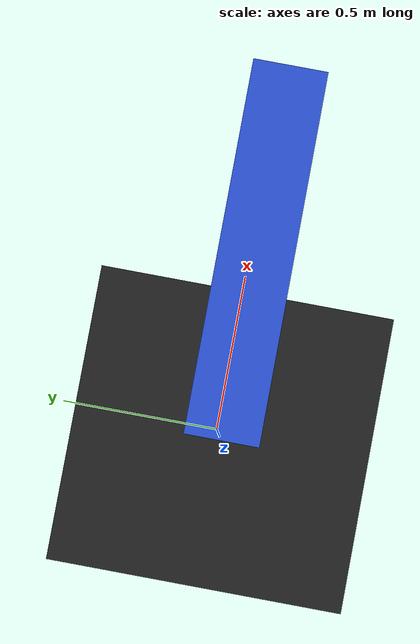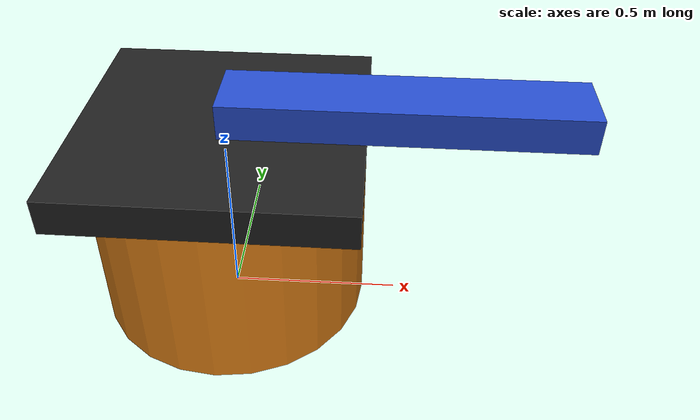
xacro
<?xml version="1.0"?>

<robot name="artemis" xmlns:xacro="http://www.ros.org/wiki/xacro">

  <!-- Constants for robot dimensions -->
  <xacro:property name="PI" value="3.1415926535897931"/>
  <xacro:property name="mass" value="1" /> <!-- arbitrary value for mass -->
  <xacro:property name="diameter1" value="0.8" />
  <xacro:property name="height1" value="0.5" />
  <xacro:property name="width" value="0.8" />
  <xacro:property name="height2" value="0.1" />
  <xacro:property name="length3" value="1.0" />
  <xacro:property name="width3" value="0.2" />
  <xacro:property name="height3" value="0.1" />

  <!-- Import all Gazebo-customization elements, including Gazebo colors -->

  <!-- Import Rviz colors -->
  <xacro:include filename="$(find artemis_description)/urdf/materials.xacro" />

  <!-- Gazebo plugin for parsing transmission tags -->
  <gazebo>
    <plugin name="gazebo_ros_control" filename="libgazebo_ros_control.so">
      <robotNamespace>/artemis</robotNamespace>
    </plugin>
  </gazebo>

  <!-- Used for fixing robot to Gazebo -->
  <link name="world"/>

  <joint name="fixed" type="fixed">
    <parent link="world"/>
    <child link="link1"/>
  </joint>

  <!-- Base Link -->
  <link name="link1">
    <collision>
      <origin xyz="0 0 ${height1/2}" rpy="0 0 0"/>
      <geometry>
	<cylinder length="${height1}" radius="${diameter1/2}" />
      </geometry>
    </collision>

    <visual>
      <origin xyz="0 0 ${height1/2}" rpy="0 0 0"/>
      <geometry>
	<cylinder length="${height1}" radius="${diameter1/2}" />
      </geometry>
      <material name="orange"/>
    </visual>

    <inertial>
      <origin xyz="0 0 ${height1/2}" rpy="0 0 0"/>
      <mass value="${mass}"/>
      <inertia
	  ixx="${mass / 12.0 * (width*width + height1*height1)}" ixy="0.0" ixz="0.0"
	  iyy="${mass / 12.0 * (height1*height1 + width*width)}" iyz="0.0"
	  izz="${mass / 12.0 * (width*width + width*width)}"/>
    </inertial>
  </link>

  <joint name="joint1" type="continuous">
    <parent link="link1"/>
    <child link="link2"/>
    <origin xyz="0 0 ${height1}" rpy="0 0 0"/>
    <axis xyz="0 0 1"/>
    <dynamics damping="0.7"/>
  </joint>

  <!-- Middle Link -->
  <link name="link2">
    <collision>
      <origin xyz="0 0 ${height2/2}" rpy="0 0 0"/>
      <geometry>
	<box size="${width} ${width} ${height2}"/>
      </geometry>
    </collision>

    <visual>
      <origin xyz="0 0 ${height2/2}" rpy="0 0 0"/>
      <geometry>
	<box size="${width} ${width} ${height2}"/>
      </geometry>
      <material name="black"/>
    </visual>

    <inertial>
      <origin xyz="0 0 ${height2/2}" rpy="0 0 0"/>
      <mass value="${mass}"/>
      <inertia
	  ixx="${mass / 12.0 * (width*width + height2*height2)}" ixy="0.0" ixz="0.0"
	  iyy="${mass / 12.0 * (height2*height2 + width*width)}" iyz="0.0"
	  izz="${mass / 12.0 * (width*width + width*width)}"/>
    </inertial>
  </link>

  <joint name="joint2" type="continuous">
    <parent link="link2"/>
    <child link="link3"/>
    <origin xyz="0 0 ${height2}" rpy="0 0 0"/>
    <axis xyz="0 1 0"/>
    <dynamics damping="0.7"/>
  </joint>

  <!-- Top Link -->
  <link name="link3">
    <collision>
      <origin xyz="${length3/2} 0 ${height3/2}" rpy="0 0 0"/>
      <geometry>
  	<box size="${length3} ${width3} ${height3}"/>
      </geometry>
    </collision>

    <visual>
      <origin xyz="${length3/2} 0 ${height3/2}" rpy="0 0 0"/>
      <geometry>
  	<box size="${length3} ${width3} ${height3}"/>
      </geometry>
      <material name="blue"/>
    </visual>

    <inertial>
      <origin xyz="0 0 ${height3/2}" rpy="0 0 0"/>
      <mass value="${mass}"/>
      <inertia
  	  ixx="${mass / 12.0 * (length3*width3 + height3*height3)}" ixy="0.0" ixz="0.0"
  	  iyy="${mass / 12.0 * (height3*height3 + length3*width3)}" iyz="0.0"
  	  izz="${mass / 12.0 * (length3*width3 + length3*width3)}"/>
    </inertial>
  </link>

  <transmission name="tran1">
    <type>transmission_interface/SimpleTransmission</type>
    <joint name="joint1">
      <hardwareInterface>PositionJointInterface</hardwareInterface>
    </joint>
    <actuator name="motor1">
      <hardwareInterface>PositionJointInterface</hardwareInterface>
      <mechanicalReduction>1</mechanicalReduction>
    </actuator>
  </transmission>

  <transmission name="trans2">
    <type>transmission_interface/SimpleTransmission</type>
    <joint name="joint2">
      <hardwareInterface>PositionJointInterface</hardwareInterface>

    </joint>
    <actuator name="motor2">
      <hardwareInterface>PositionJointInterface</hardwareInterface>
      <mechanicalReduction>1</mechanicalReduction>
    </actuator>
  </transmission>

</robot>
